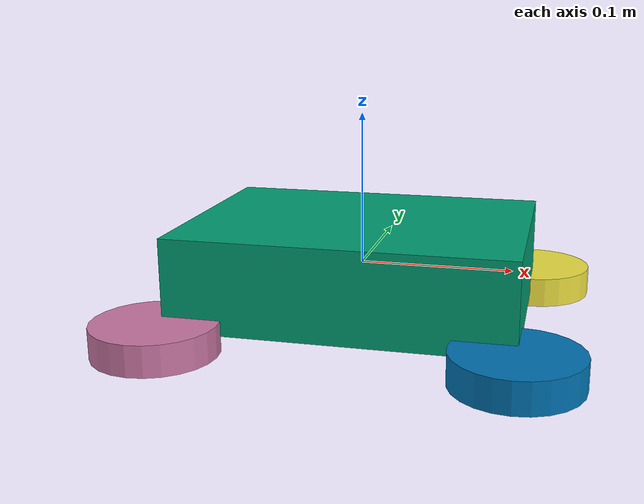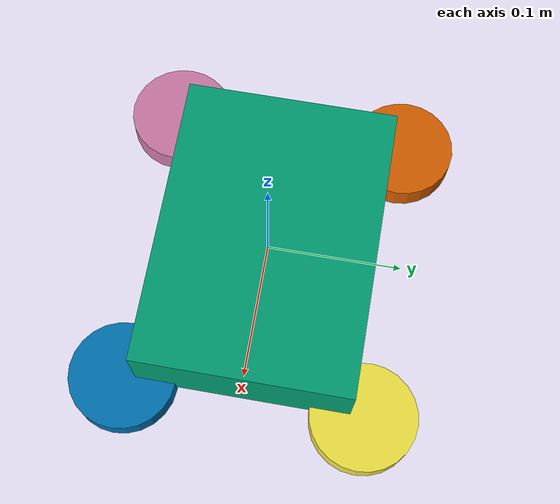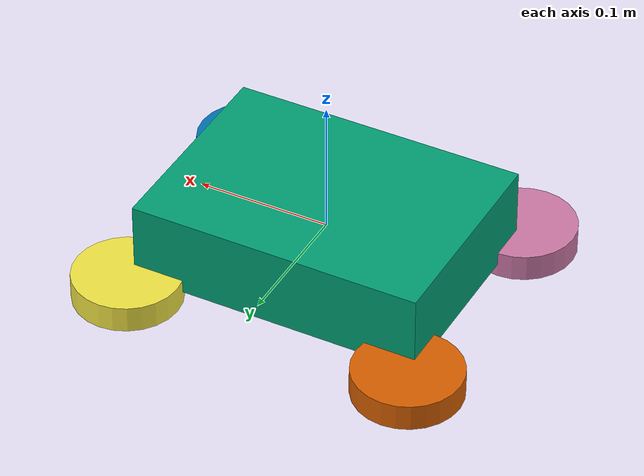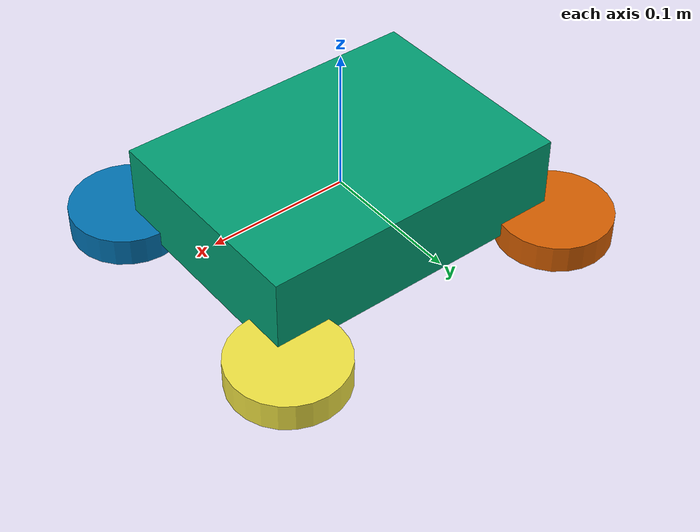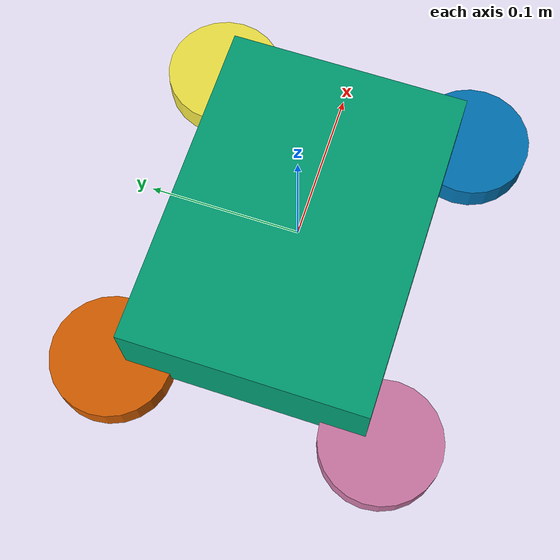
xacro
<?xml version="1.0"?>
<robot name="mentor_pi_hardwares_ackermann" xmlns:xacro="http://www.ros.org/wiki/xacro">

  <xacro:arg name="robot_name" default="mentor_pi"/>
  <xacro:arg name="feedback_timeout_ms" default="100"/>
  <xacro:arg name="imu_timeout_ms" default="100"/>
  <xacro:arg name="steering_pwm_channel" default="3"/>
  <xacro:arg name="steering_pwm_min_us" default="500"/>
  <xacro:arg name="steering_pwm_center_us" default="1500"/>
  <xacro:arg name="steering_pwm_max_us" default="2500"/>
  <xacro:arg name="steering_angle_min_rad" default="-0.6"/>
  <xacro:arg name="steering_angle_max_rad" default="0.6"/>
  <xacro:arg name="steering_inverted" default="true"/>
  <xacro:arg name="steering_duration_ms" default="20"/>
  <xacro:arg name="rear_wheel_radius_m" default="0.0325"/>
  <xacro:arg name="wheelbase_m" default="0.135"/>
  <xacro:arg name="linear_adrc_input_gain_per_second" default="5.0"/>
  <xacro:arg name="linear_adrc_controller_bandwidth_rad_s" default="1.0"/>
  <xacro:arg name="linear_adrc_observer_bandwidth_rad_s" default="3.0"/>
  <xacro:arg name="linear_adrc_measurement_lpf_cutoff_hz" default="5.0"/>
  <xacro:arg name="yaw_adrc_input_gain_per_mps" default="30.0"/>
  <xacro:arg name="yaw_adrc_controller_bandwidth_rad_s" default="1.0"/>
  <xacro:arg name="yaw_adrc_observer_bandwidth_rad_s" default="3.0"/>
  <xacro:arg name="yaw_adrc_measurement_lpf_cutoff_hz" default="5.0"/>
  <xacro:arg name="yaw_adrc_minimum_speed_mps" default="0.1"/>

  <xacro:include filename="$(find mentor_pi_hardwares)/config/ackermann/description.urdf.xacro"/>
  <xacro:include filename="$(find mentor_pi_hardwares)/config/ackermann/ros2_control.xacro"/>

  <xacro:ackermann_car frame_prefix="$(arg robot_name)/"/>
  <xacro:ackermann_control
      robot_name="$(arg robot_name)"
      feedback_timeout_ms="$(arg feedback_timeout_ms)"
      imu_timeout_ms="$(arg imu_timeout_ms)"
      steering_pwm_channel="$(arg steering_pwm_channel)"
      steering_pwm_min_us="$(arg steering_pwm_min_us)"
      steering_pwm_center_us="$(arg steering_pwm_center_us)"
      steering_pwm_max_us="$(arg steering_pwm_max_us)"
      steering_angle_min_rad="$(arg steering_angle_min_rad)"
      steering_angle_max_rad="$(arg steering_angle_max_rad)"
      steering_inverted="$(arg steering_inverted)"
      steering_duration_ms="$(arg steering_duration_ms)"
      rear_wheel_radius_m="$(arg rear_wheel_radius_m)"
      wheelbase_m="$(arg wheelbase_m)"
      linear_adrc_input_gain_per_second="$(arg linear_adrc_input_gain_per_second)"
      linear_adrc_controller_bandwidth_rad_s="$(arg linear_adrc_controller_bandwidth_rad_s)"
      linear_adrc_observer_bandwidth_rad_s="$(arg linear_adrc_observer_bandwidth_rad_s)"
      linear_adrc_measurement_lpf_cutoff_hz="$(arg linear_adrc_measurement_lpf_cutoff_hz)"
      yaw_adrc_input_gain_per_mps="$(arg yaw_adrc_input_gain_per_mps)"
      yaw_adrc_controller_bandwidth_rad_s="$(arg yaw_adrc_controller_bandwidth_rad_s)"
      yaw_adrc_observer_bandwidth_rad_s="$(arg yaw_adrc_observer_bandwidth_rad_s)"
      yaw_adrc_measurement_lpf_cutoff_hz="$(arg yaw_adrc_measurement_lpf_cutoff_hz)"
      yaw_adrc_minimum_speed_mps="$(arg yaw_adrc_minimum_speed_mps)"/>

</robot>

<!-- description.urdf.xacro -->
<robot name="mentor_pi_ackermann" xmlns:xacro="http://www.ros.org/wiki/xacro">

  <xacro:macro name="ackermann_car" params="frame_prefix:=''">
    <link name="${frame_prefix}rear_axle_footprint"/>
    <link name="${frame_prefix}base_footprint"/>

    <joint name="rear_axle_footprint_joint" type="fixed">
      <parent link="${frame_prefix}base_footprint"/>
      <child link="${frame_prefix}rear_axle_footprint"/>
      <origin xyz="-0.0675 0 0" rpy="0 0 0"/>
    </joint>

    <link name="${frame_prefix}base_link">
      <inertial>
        <origin xyz="0 0 0.025" rpy="0 0 0"/>
        <mass value="1.0"/>
        <inertia ixx="0.01" ixy="0" ixz="0" iyy="0.01" iyz="0" izz="0.02"/>
      </inertial>
      <visual>
        <geometry>
          <box size="0.22 0.16 0.06"/>
        </geometry>
      </visual>
      <collision>
        <geometry>
          <box size="0.22 0.16 0.06"/>
        </geometry>
      </collision>
    </link>

    <joint name="base_footprint_joint" type="fixed">
      <parent link="${frame_prefix}base_footprint"/>
      <child link="${frame_prefix}base_link"/>
      <origin xyz="0 0 0" rpy="0 0 0"/>
    </joint>

    <link name="${frame_prefix}wheel_left_front_link">
      <visual><geometry><cylinder radius="0.04" length="0.02"/></geometry></visual>
      <collision><geometry><cylinder radius="0.04" length="0.02"/></geometry></collision>
    </link>
    <joint name="wheel_left_front_joint" type="revolute">
      <parent link="${frame_prefix}base_link"/>
      <child link="${frame_prefix}wheel_left_front_link"/>
      <origin xyz="0.11 0.09 -0.03" rpy="0 0 0"/>
      <axis xyz="0 0 1"/>
      <limit lower="-0.6" upper="0.6" effort="1.0" velocity="1.5"/>
    </joint>

    <link name="${frame_prefix}wheel_right_front_link">
      <visual><geometry><cylinder radius="0.04" length="0.02"/></geometry></visual>
      <collision><geometry><cylinder radius="0.04" length="0.02"/></geometry></collision>
    </link>
    <joint name="wheel_right_front_joint" type="revolute">
      <parent link="${frame_prefix}base_link"/>
      <child link="${frame_prefix}wheel_right_front_link"/>
      <origin xyz="0.11 -0.09 -0.03" rpy="0 0 0"/>
      <axis xyz="0 0 1"/>
      <limit lower="-0.6" upper="0.6" effort="1.0" velocity="1.5"/>
    </joint>

    <link name="${frame_prefix}wheel_left_rear_link">
      <visual><geometry><cylinder radius="0.04" length="0.02"/></geometry></visual>
      <collision><geometry><cylinder radius="0.04" length="0.02"/></geometry></collision>
    </link>
    <joint name="wheel_left_rear_joint" type="continuous">
      <parent link="${frame_prefix}base_link"/>
      <child link="${frame_prefix}wheel_left_rear_link"/>
      <origin xyz="-0.11 0.09 -0.03" rpy="0 0 0"/>
      <axis xyz="0 1 0"/>
    </joint>

    <link name="${frame_prefix}wheel_right_rear_link">
      <visual><geometry><cylinder radius="0.04" length="0.02"/></geometry></visual>
      <collision><geometry><cylinder radius="0.04" length="0.02"/></geometry></collision>
    </link>
    <joint name="wheel_right_rear_joint" type="continuous">
      <parent link="${frame_prefix}base_link"/>
      <child link="${frame_prefix}wheel_right_rear_link"/>
      <origin xyz="-0.11 -0.09 -0.03" rpy="0 0 0"/>
      <axis xyz="0 1 0"/>
    </joint>

    <link name="${frame_prefix}imu_link"/>
    <joint name="imu_joint" type="fixed">
      <parent link="${frame_prefix}base_link"/>
      <child link="${frame_prefix}imu_link"/>
      <origin xyz="0 0 0.05" rpy="0 0 0"/>
    </joint>
  </xacro:macro>

</robot>
